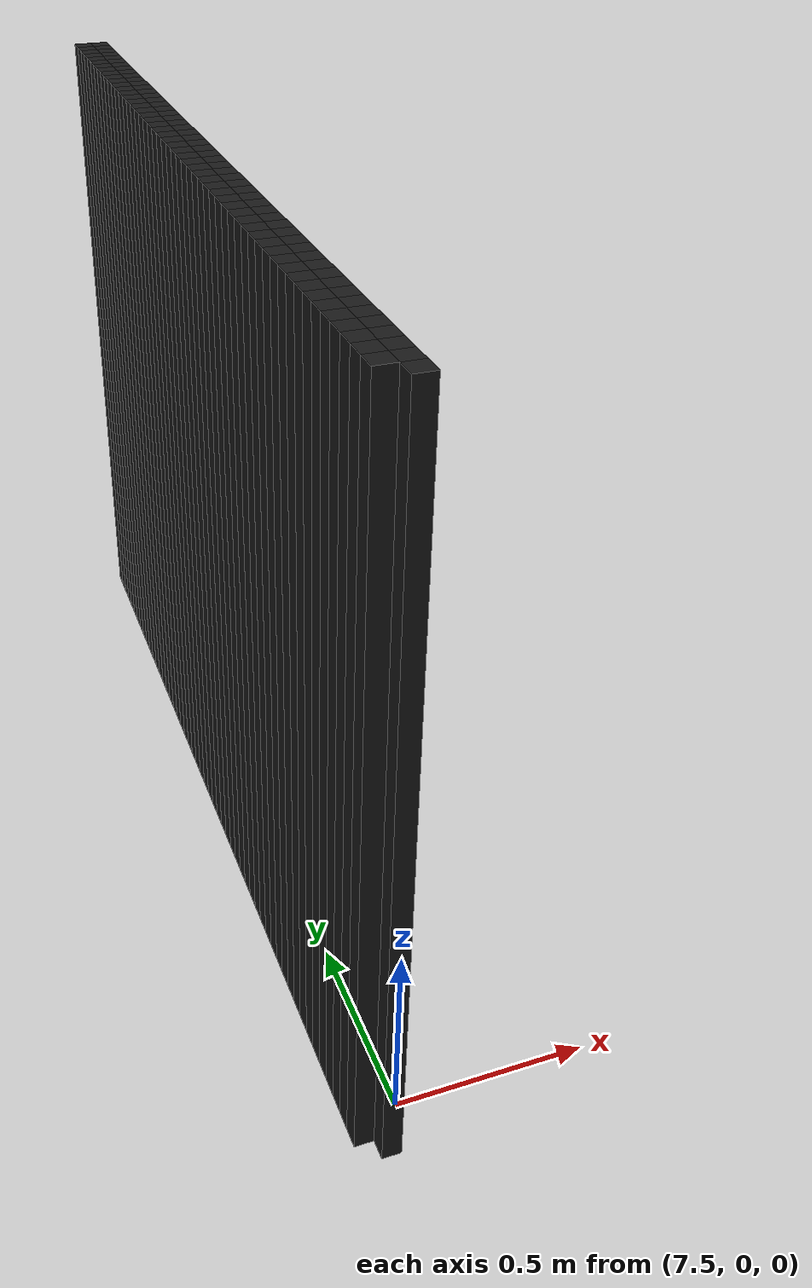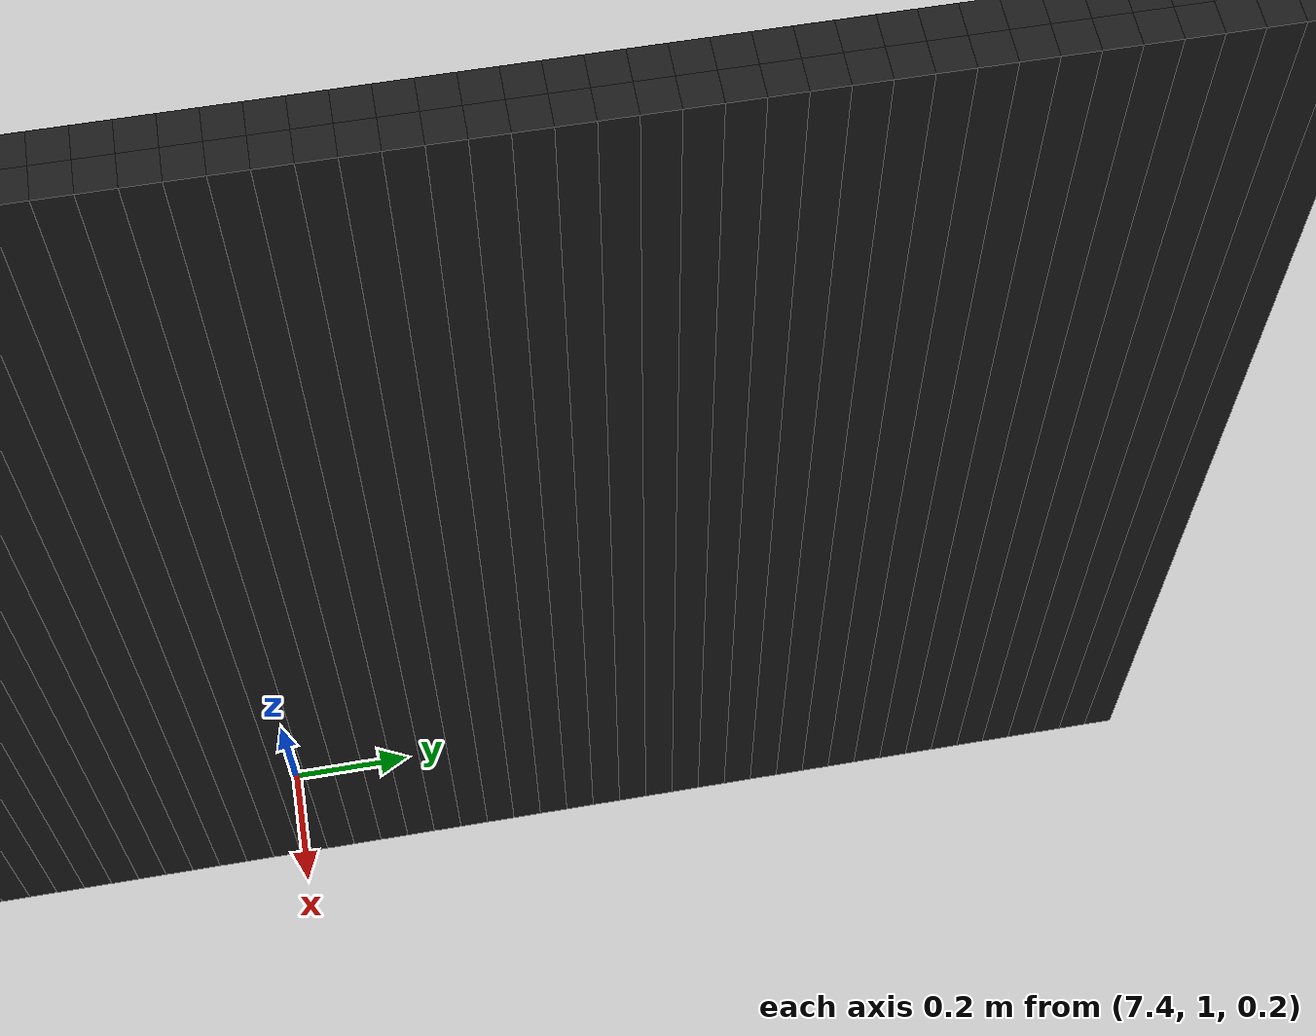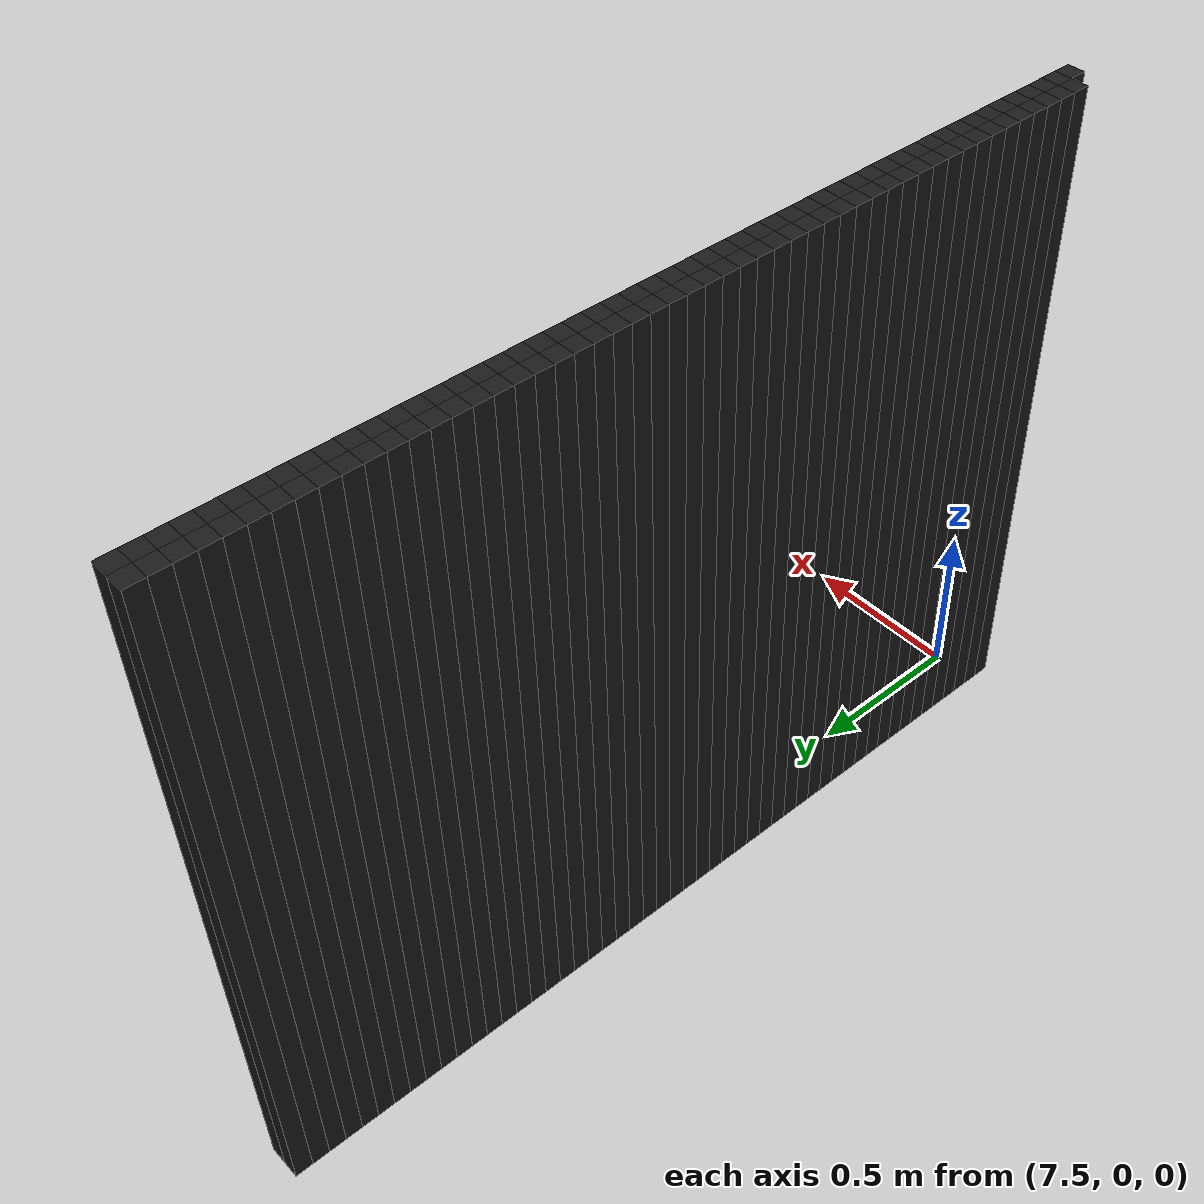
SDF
<sdf version="1.6">
 <model name="obstacle_238_117">
  <pose>7.390000000000001 2.5 1.0 0 0 0</pose>
  <static>true</static>
  <link name="box_link">
   <collision name="box_collision"><geometry><box><size>0.05 0.05 2.0</size></box></geometry></collision>
   <visual name="box_visual">
    <geometry><box><size>0.05 0.05 2.0</size></box></geometry>
    <material><ambient>0 0 0 1</ambient><diffuse>0.1 0.1 0.1 1</diffuse></material>
   </visual>
  </link>
 </model>
 <model name="obstacle_239_117">
  <pose>7.440000000000001 2.5 1.0 0 0 0</pose>
  <static>true</static>
  <link name="box_link">
   <collision name="box_collision"><geometry><box><size>0.05 0.05 2.0</size></box></geometry></collision>
   <visual name="box_visual">
    <geometry><box><size>0.05 0.05 2.0</size></box></geometry>
    <material><ambient>0 0 0 1</ambient><diffuse>0.1 0.1 0.1 1</diffuse></material>
   </visual>
  </link>
 </model>
 <model name="obstacle_238_118">
  <pose>7.390000000000001 2.45 1.0 0 0 0</pose>
  <static>true</static>
  <link name="box_link">
   <collision name="box_collision"><geometry><box><size>0.05 0.05 2.0</size></box></geometry></collision>
   <visual name="box_visual">
    <geometry><box><size>0.05 0.05 2.0</size></box></geometry>
    <material><ambient>0 0 0 1</ambient><diffuse>0.1 0.1 0.1 1</diffuse></material>
   </visual>
  </link>
 </model>
 <model name="obstacle_239_118">
  <pose>7.440000000000001 2.45 1.0 0 0 0</pose>
  <static>true</static>
  <link name="box_link">
   <collision name="box_collision"><geometry><box><size>0.05 0.05 2.0</size></box></geometry></collision>
   <visual name="box_visual">
    <geometry><box><size>0.05 0.05 2.0</size></box></geometry>
    <material><ambient>0 0 0 1</ambient><diffuse>0.1 0.1 0.1 1</diffuse></material>
   </visual>
  </link>
 </model>
 <model name="obstacle_238_119">
  <pose>7.390000000000001 2.4000000000000004 1.0 0 0 0</pose>
  <static>true</static>
  <link name="box_link">
   <collision name="box_collision"><geometry><box><size>0.05 0.05 2.0</size></box></geometry></collision>
   <visual name="box_visual">
    <geometry><box><size>0.05 0.05 2.0</size></box></geometry>
    <material><ambient>0 0 0 1</ambient><diffuse>0.1 0.1 0.1 1</diffuse></material>
   </visual>
  </link>
 </model>
 <model name="obstacle_239_119">
  <pose>7.440000000000001 2.4000000000000004 1.0 0 0 0</pose>
  <static>true</static>
  <link name="box_link">
   <collision name="box_collision"><geometry><box><size>0.05 0.05 2.0</size></box></geometry></collision>
   <visual name="box_visual">
    <geometry><box><size>0.05 0.05 2.0</size></box></geometry>
    <material><ambient>0 0 0 1</ambient><diffuse>0.1 0.1 0.1 1</diffuse></material>
   </visual>
  </link>
 </model>
 <model name="obstacle_238_120">
  <pose>7.390000000000001 2.3499999999999996 1.0 0 0 0</pose>
  <static>true</static>
  <link name="box_link">
   <collision name="box_collision"><geometry><box><size>0.05 0.05 2.0</size></box></geometry></collision>
   <visual name="box_visual">
    <geometry><box><size>0.05 0.05 2.0</size></box></geometry>
    <material><ambient>0 0 0 1</ambient><diffuse>0.1 0.1 0.1 1</diffuse></material>
   </visual>
  </link>
 </model>
 <model name="obstacle_239_120">
  <pose>7.440000000000001 2.3499999999999996 1.0 0 0 0</pose>
  <static>true</static>
  <link name="box_link">
   <collision name="box_collision"><geometry><box><size>0.05 0.05 2.0</size></box></geometry></collision>
   <visual name="box_visual">
    <geometry><box><size>0.05 0.05 2.0</size></box></geometry>
    <material><ambient>0 0 0 1</ambient><diffuse>0.1 0.1 0.1 1</diffuse></material>
   </visual>
  </link>
 </model>
 <model name="obstacle_238_121">
  <pose>7.390000000000001 2.3 1.0 0 0 0</pose>
  <static>true</static>
  <link name="box_link">
   <collision name="box_collision"><geometry><box><size>0.05 0.05 2.0</size></box></geometry></collision>
   <visual name="box_visual">
    <geometry><box><size>0.05 0.05 2.0</size></box></geometry>
    <material><ambient>0 0 0 1</ambient><diffuse>0.1 0.1 0.1 1</diffuse></material>
   </visual>
  </link>
 </model>
 <model name="obstacle_239_121">
  <pose>7.440000000000001 2.3 1.0 0 0 0</pose>
  <static>true</static>
  <link name="box_link">
   <collision name="box_collision"><geometry><box><size>0.05 0.05 2.0</size></box></geometry></collision>
   <visual name="box_visual">
    <geometry><box><size>0.05 0.05 2.0</size></box></geometry>
    <material><ambient>0 0 0 1</ambient><diffuse>0.1 0.1 0.1 1</diffuse></material>
   </visual>
  </link>
 </model>
 <model name="obstacle_238_122">
  <pose>7.390000000000001 2.25 1.0 0 0 0</pose>
  <static>true</static>
  <link name="box_link">
   <collision name="box_collision"><geometry><box><size>0.05 0.05 2.0</size></box></geometry></collision>
   <visual name="box_visual">
    <geometry><box><size>0.05 0.05 2.0</size></box></geometry>
    <material><ambient>0 0 0 1</ambient><diffuse>0.1 0.1 0.1 1</diffuse></material>
   </visual>
  </link>
 </model>
 <model name="obstacle_239_122">
  <pose>7.440000000000001 2.25 1.0 0 0 0</pose>
  <static>true</static>
  <link name="box_link">
   <collision name="box_collision"><geometry><box><size>0.05 0.05 2.0</size></box></geometry></collision>
   <visual name="box_visual">
    <geometry><box><size>0.05 0.05 2.0</size></box></geometry>
    <material><ambient>0 0 0 1</ambient><diffuse>0.1 0.1 0.1 1</diffuse></material>
   </visual>
  </link>
 </model>
 <model name="obstacle_238_123">
  <pose>7.390000000000001 2.2 1.0 0 0 0</pose>
  <static>true</static>
  <link name="box_link">
   <collision name="box_collision"><geometry><box><size>0.05 0.05 2.0</size></box></geometry></collision>
   <visual name="box_visual">
    <geometry><box><size>0.05 0.05 2.0</size></box></geometry>
    <material><ambient>0 0 0 1</ambient><diffuse>0.1 0.1 0.1 1</diffuse></material>
   </visual>
  </link>
 </model>
 <model name="obstacle_239_123">
  <pose>7.440000000000001 2.2 1.0 0 0 0</pose>
  <static>true</static>
  <link name="box_link">
   <collision name="box_collision"><geometry><box><size>0.05 0.05 2.0</size></box></geometry></collision>
   <visual name="box_visual">
    <geometry><box><size>0.05 0.05 2.0</size></box></geometry>
    <material><ambient>0 0 0 1</ambient><diffuse>0.1 0.1 0.1 1</diffuse></material>
   </visual>
  </link>
 </model>
 <model name="obstacle_238_124">
  <pose>7.390000000000001 2.1500000000000004 1.0 0 0 0</pose>
  <static>true</static>
  <link name="box_link">
   <collision name="box_collision"><geometry><box><size>0.05 0.05 2.0</size></box></geometry></collision>
   <visual name="box_visual">
    <geometry><box><size>0.05 0.05 2.0</size></box></geometry>
    <material><ambient>0 0 0 1</ambient><diffuse>0.1 0.1 0.1 1</diffuse></material>
   </visual>
  </link>
 </model>
 <model name="obstacle_239_124">
  <pose>7.440000000000001 2.1500000000000004 1.0 0 0 0</pose>
  <static>true</static>
  <link name="box_link">
   <collision name="box_collision"><geometry><box><size>0.05 0.05 2.0</size></box></geometry></collision>
   <visual name="box_visual">
    <geometry><box><size>0.05 0.05 2.0</size></box></geometry>
    <material><ambient>0 0 0 1</ambient><diffuse>0.1 0.1 0.1 1</diffuse></material>
   </visual>
  </link>
 </model>
 <model name="obstacle_238_125">
  <pose>7.390000000000001 2.0999999999999996 1.0 0 0 0</pose>
  <static>true</static>
  <link name="box_link">
   <collision name="box_collision"><geometry><box><size>0.05 0.05 2.0</size></box></geometry></collision>
   <visual name="box_visual">
    <geometry><box><size>0.05 0.05 2.0</size></box></geometry>
    <material><ambient>0 0 0 1</ambient><diffuse>0.1 0.1 0.1 1</diffuse></material>
   </visual>
  </link>
 </model>
 <model name="obstacle_239_125">
  <pose>7.440000000000001 2.0999999999999996 1.0 0 0 0</pose>
  <static>true</static>
  <link name="box_link">
   <collision name="box_collision"><geometry><box><size>0.05 0.05 2.0</size></box></geometry></collision>
   <visual name="box_visual">
    <geometry><box><size>0.05 0.05 2.0</size></box></geometry>
    <material><ambient>0 0 0 1</ambient><diffuse>0.1 0.1 0.1 1</diffuse></material>
   </visual>
  </link>
 </model>
 <model name="obstacle_238_126">
  <pose>7.390000000000001 2.05 1.0 0 0 0</pose>
  <static>true</static>
  <link name="box_link">
   <collision name="box_collision"><geometry><box><size>0.05 0.05 2.0</size></box></geometry></collision>
   <visual name="box_visual">
    <geometry><box><size>0.05 0.05 2.0</size></box></geometry>
    <material><ambient>0 0 0 1</ambient><diffuse>0.1 0.1 0.1 1</diffuse></material>
   </visual>
  </link>
 </model>
 <model name="obstacle_239_126">
  <pose>7.440000000000001 2.05 1.0 0 0 0</pose>
  <static>true</static>
  <link name="box_link">
   <collision name="box_collision"><geometry><box><size>0.05 0.05 2.0</size></box></geometry></collision>
   <visual name="box_visual">
    <geometry><box><size>0.05 0.05 2.0</size></box></geometry>
    <material><ambient>0 0 0 1</ambient><diffuse>0.1 0.1 0.1 1</diffuse></material>
   </visual>
  </link>
 </model>
 <model name="obstacle_238_127">
  <pose>7.390000000000001 2.0 1.0 0 0 0</pose>
  <static>true</static>
  <link name="box_link">
   <collision name="box_collision"><geometry><box><size>0.05 0.05 2.0</size></box></geometry></collision>
   <visual name="box_visual">
    <geometry><box><size>0.05 0.05 2.0</size></box></geometry>
    <material><ambient>0 0 0 1</ambient><diffuse>0.1 0.1 0.1 1</diffuse></material>
   </visual>
  </link>
 </model>
 <model name="obstacle_239_127">
  <pose>7.440000000000001 2.0 1.0 0 0 0</pose>
  <static>true</static>
  <link name="box_link">
   <collision name="box_collision"><geometry><box><size>0.05 0.05 2.0</size></box></geometry></collision>
   <visual name="box_visual">
    <geometry><box><size>0.05 0.05 2.0</size></box></geometry>
    <material><ambient>0 0 0 1</ambient><diffuse>0.1 0.1 0.1 1</diffuse></material>
   </visual>
  </link>
 </model>
 <model name="obstacle_238_128">
  <pose>7.390000000000001 1.9500000000000002 1.0 0 0 0</pose>
  <static>true</static>
  <link name="box_link">
   <collision name="box_collision"><geometry><box><size>0.05 0.05 2.0</size></box></geometry></collision>
   <visual name="box_visual">
    <geometry><box><size>0.05 0.05 2.0</size></box></geometry>
    <material><ambient>0 0 0 1</ambient><diffuse>0.1 0.1 0.1 1</diffuse></material>
   </visual>
  </link>
 </model>
 <model name="obstacle_239_128">
  <pose>7.440000000000001 1.9500000000000002 1.0 0 0 0</pose>
  <static>true</static>
  <link name="box_link">
   <collision name="box_collision"><geometry><box><size>0.05 0.05 2.0</size></box></geometry></collision>
   <visual name="box_visual">
    <geometry><box><size>0.05 0.05 2.0</size></box></geometry>
    <material><ambient>0 0 0 1</ambient><diffuse>0.1 0.1 0.1 1</diffuse></material>
   </visual>
  </link>
 </model>
 <model name="obstacle_238_129">
  <pose>7.390000000000001 1.9000000000000004 1.0 0 0 0</pose>
  <static>true</static>
  <link name="box_link">
   <collision name="box_collision"><geometry><box><size>0.05 0.05 2.0</size></box></geometry></collision>
   <visual name="box_visual">
    <geometry><box><size>0.05 0.05 2.0</size></box></geometry>
    <material><ambient>0 0 0 1</ambient><diffuse>0.1 0.1 0.1 1</diffuse></material>
   </visual>
  </link>
 </model>
 <model name="obstacle_239_129">
  <pose>7.440000000000001 1.9000000000000004 1.0 0 0 0</pose>
  <static>true</static>
  <link name="box_link">
   <collision name="box_collision"><geometry><box><size>0.05 0.05 2.0</size></box></geometry></collision>
   <visual name="box_visual">
    <geometry><box><size>0.05 0.05 2.0</size></box></geometry>
    <material><ambient>0 0 0 1</ambient><diffuse>0.1 0.1 0.1 1</diffuse></material>
   </visual>
  </link>
 </model>
 <model name="obstacle_238_130">
  <pose>7.390000000000001 1.8499999999999996 1.0 0 0 0</pose>
  <static>true</static>
  <link name="box_link">
   <collision name="box_collision"><geometry><box><size>0.05 0.05 2.0</size></box></geometry></collision>
   <visual name="box_visual">
    <geometry><box><size>0.05 0.05 2.0</size></box></geometry>
    <material><ambient>0 0 0 1</ambient><diffuse>0.1 0.1 0.1 1</diffuse></material>
   </visual>
  </link>
 </model>
 <model name="obstacle_239_130">
  <pose>7.440000000000001 1.8499999999999996 1.0 0 0 0</pose>
  <static>true</static>
  <link name="box_link">
   <collision name="box_collision"><geometry><box><size>0.05 0.05 2.0</size></box></geometry></collision>
   <visual name="box_visual">
    <geometry><box><size>0.05 0.05 2.0</size></box></geometry>
    <material><ambient>0 0 0 1</ambient><diffuse>0.1 0.1 0.1 1</diffuse></material>
   </visual>
  </link>
 </model>
 <model name="obstacle_238_131">
  <pose>7.390000000000001 1.7999999999999998 1.0 0 0 0</pose>
  <static>true</static>
  <link name="box_link">
   <collision name="box_collision"><geometry><box><size>0.05 0.05 2.0</size></box></geometry></collision>
   <visual name="box_visual">
    <geometry><box><size>0.05 0.05 2.0</size></box></geometry>
    <material><ambient>0 0 0 1</ambient><diffuse>0.1 0.1 0.1 1</diffuse></material>
   </visual>
  </link>
 </model>
 <model name="obstacle_239_131">
  <pose>7.440000000000001 1.7999999999999998 1.0 0 0 0</pose>
  <static>true</static>
  <link name="box_link">
   <collision name="box_collision"><geometry><box><size>0.05 0.05 2.0</size></box></geometry></collision>
   <visual name="box_visual">
    <geometry><box><size>0.05 0.05 2.0</size></box></geometry>
    <material><ambient>0 0 0 1</ambient><diffuse>0.1 0.1 0.1 1</diffuse></material>
   </visual>
  </link>
 </model>
 <model name="obstacle_238_132">
  <pose>7.390000000000001 1.75 1.0 0 0 0</pose>
  <static>true</static>
  <link name="box_link">
   <collision name="box_collision"><geometry><box><size>0.05 0.05 2.0</size></box></geometry></collision>
   <visual name="box_visual">
    <geometry><box><size>0.05 0.05 2.0</size></box></geometry>
    <material><ambient>0 0 0 1</ambient><diffuse>0.1 0.1 0.1 1</diffuse></material>
   </visual>
  </link>
 </model>
 <model name="obstacle_239_132">
  <pose>7.440000000000001 1.75 1.0 0 0 0</pose>
  <static>true</static>
  <link name="box_link">
   <collision name="box_collision"><geometry><box><size>0.05 0.05 2.0</size></box></geometry></collision>
   <visual name="box_visual">
    <geometry><box><size>0.05 0.05 2.0</size></box></geometry>
    <material><ambient>0 0 0 1</ambient><diffuse>0.1 0.1 0.1 1</diffuse></material>
   </visual>
  </link>
 </model>
 <model name="obstacle_238_133">
  <pose>7.390000000000001 1.7000000000000002 1.0 0 0 0</pose>
  <static>true</static>
  <link name="box_link">
   <collision name="box_collision"><geometry><box><size>0.05 0.05 2.0</size></box></geometry></collision>
   <visual name="box_visual">
    <geometry><box><size>0.05 0.05 2.0</size></box></geometry>
    <material><ambient>0 0 0 1</ambient><diffuse>0.1 0.1 0.1 1</diffuse></material>
   </visual>
  </link>
 </model>
 <model name="obstacle_239_133">
  <pose>7.440000000000001 1.7000000000000002 1.0 0 0 0</pose>
  <static>true</static>
  <link name="box_link">
   <collision name="box_collision"><geometry><box><size>0.05 0.05 2.0</size></box></geometry></collision>
   <visual name="box_visual">
    <geometry><box><size>0.05 0.05 2.0</size></box></geometry>
    <material><ambient>0 0 0 1</ambient><diffuse>0.1 0.1 0.1 1</diffuse></material>
   </visual>
  </link>
 </model>
 <model name="obstacle_238_134">
  <pose>7.390000000000001 1.65 1.0 0 0 0</pose>
  <static>true</static>
  <link name="box_link">
   <collision name="box_collision"><geometry><box><size>0.05 0.05 2.0</size></box></geometry></collision>
   <visual name="box_visual">
    <geometry><box><size>0.05 0.05 2.0</size></box></geometry>
    <material><ambient>0 0 0 1</ambient><diffuse>0.1 0.1 0.1 1</diffuse></material>
   </visual>
  </link>
 </model>
 <model name="obstacle_239_134">
  <pose>7.440000000000001 1.65 1.0 0 0 0</pose>
  <static>true</static>
  <link name="box_link">
   <collision name="box_collision"><geometry><box><size>0.05 0.05 2.0</size></box></geometry></collision>
   <visual name="box_visual">
    <geometry><box><size>0.05 0.05 2.0</size></box></geometry>
    <material><ambient>0 0 0 1</ambient><diffuse>0.1 0.1 0.1 1</diffuse></material>
   </visual>
  </link>
 </model>
 <model name="obstacle_238_135">
  <pose>7.390000000000001 1.6 1.0 0 0 0</pose>
  <static>true</static>
  <link name="box_link">
   <collision name="box_collision"><geometry><box><size>0.05 0.05 2.0</size></box></geometry></collision>
   <visual name="box_visual">
    <geometry><box><size>0.05 0.05 2.0</size></box></geometry>
    <material><ambient>0 0 0 1</ambient><diffuse>0.1 0.1 0.1 1</diffuse></material>
   </visual>
  </link>
 </model>
 <model name="obstacle_239_135">
  <pose>7.440000000000001 1.6 1.0 0 0 0</pose>
  <static>true</static>
  <link name="box_link">
   <collision name="box_collision"><geometry><box><size>0.05 0.05 2.0</size></box></geometry></collision>
   <visual name="box_visual">
    <geometry><box><size>0.05 0.05 2.0</size></box></geometry>
    <material><ambient>0 0 0 1</ambient><diffuse>0.1 0.1 0.1 1</diffuse></material>
   </visual>
  </link>
 </model>
 <model name="obstacle_238_136">
  <pose>7.390000000000001 1.5499999999999998 1.0 0 0 0</pose>
  <static>true</static>
  <link name="box_link">
   <collision name="box_collision"><geometry><box><size>0.05 0.05 2.0</size></box></geometry></collision>
   <visual name="box_visual">
    <geometry><box><size>0.05 0.05 2.0</size></box></geometry>
    <material><ambient>0 0 0 1</ambient><diffuse>0.1 0.1 0.1 1</diffuse></material>
   </visual>
  </link>
 </model>
 <model name="obstacle_239_136">
  <pose>7.440000000000001 1.5499999999999998 1.0 0 0 0</pose>
  <static>true</static>
  <link name="box_link">
   <collision name="box_collision"><geometry><box><size>0.05 0.05 2.0</size></box></geometry></collision>
   <visual name="box_visual">
    <geometry><box><size>0.05 0.05 2.0</size></box></geometry>
    <material><ambient>0 0 0 1</ambient><diffuse>0.1 0.1 0.1 1</diffuse></material>
   </visual>
  </link>
 </model>
 <model name="obstacle_238_137">
  <pose>7.390000000000001 1.5 1.0 0 0 0</pose>
  <static>true</static>
  <link name="box_link">
   <collision name="box_collision"><geometry><box><size>0.05 0.05 2.0</size></box></geometry></collision>
   <visual name="box_visual">
    <geometry><box><size>0.05 0.05 2.0</size></box></geometry>
    <material><ambient>0 0 0 1</ambient><diffuse>0.1 0.1 0.1 1</diffuse></material>
   </visual>
  </link>
 </model>
 <model name="obstacle_239_137">
  <pose>7.440000000000001 1.5 1.0 0 0 0</pose>
  <static>true</static>
  <link name="box_link">
   <collision name="box_collision"><geometry><box><size>0.05 0.05 2.0</size></box></geometry></collision>
   <visual name="box_visual">
    <geometry><box><size>0.05 0.05 2.0</size></box></geometry>
    <material><ambient>0 0 0 1</ambient><diffuse>0.1 0.1 0.1 1</diffuse></material>
   </visual>
  </link>
 </model>
 <model name="obstacle_238_138">
  <pose>7.390000000000001 1.4500000000000002 1.0 0 0 0</pose>
  <static>true</static>
  <link name="box_link">
   <collision name="box_collision"><geometry><box><size>0.05 0.05 2.0</size></box></geometry></collision>
   <visual name="box_visual">
    <geometry><box><size>0.05 0.05 2.0</size></box></geometry>
    <material><ambient>0 0 0 1</ambient><diffuse>0.1 0.1 0.1 1</diffuse></material>
   </visual>
  </link>
 </model>
 <model name="obstacle_239_138">
  <pose>7.440000000000001 1.4500000000000002 1.0 0 0 0</pose>
  <static>true</static>
  <link name="box_link">
   <collision name="box_collision"><geometry><box><size>0.05 0.05 2.0</size></box></geometry></collision>
   <visual name="box_visual">
    <geometry><box><size>0.05 0.05 2.0</size></box></geometry>
    <material><ambient>0 0 0 1</ambient><diffuse>0.1 0.1 0.1 1</diffuse></material>
   </visual>
  </link>
 </model>
 <model name="obstacle_238_139">
  <pose>7.390000000000001 1.4 1.0 0 0 0</pose>
  <static>true</static>
  <link name="box_link">
   <collision name="box_collision"><geometry><box><size>0.05 0.05 2.0</size></box></geometry></collision>
   <visual name="box_visual">
    <geometry><box><size>0.05 0.05 2.0</size></box></geometry>
    <material><ambient>0 0 0 1</ambient><diffuse>0.1 0.1 0.1 1</diffuse></material>
   </visual>
  </link>
 </model>
 <model name="obstacle_239_139">
  <pose>7.440000000000001 1.4 1.0 0 0 0</pose>
  <static>true</static>
  <link name="box_link">
   <collision name="box_collision"><geometry><box><size>0.05 0.05 2.0</size></box></geometry></collision>
   <visual name="box_visual">
    <geometry><box><size>0.05 0.05 2.0</size></box></geometry>
    <material><ambient>0 0 0 1</ambient><diffuse>0.1 0.1 0.1 1</diffuse></material>
   </visual>
  </link>
 </model>
 <model name="obstacle_238_140">
  <pose>7.390000000000001 1.35 1.0 0 0 0</pose>
  <static>true</static>
  <link name="box_link">
   <collision name="box_collision"><geometry><box><size>0.05 0.05 2.0</size></box></geometry></collision>
   <visual name="box_visual">
    <geometry><box><size>0.05 0.05 2.0</size></box></geometry>
    <material><ambient>0 0 0 1</ambient><diffuse>0.1 0.1 0.1 1</diffuse></material>
   </visual>
  </link>
 </model>
 <model name="obstacle_239_140">
  <pose>7.440000000000001 1.35 1.0 0 0 0</pose>
  <static>true</static>
  <link name="box_link">
   <collision name="box_collision"><geometry><box><size>0.05 0.05 2.0</size></box></geometry></collision>
   <visual name="box_visual">
    <geometry><box><size>0.05 0.05 2.0</size></box></geometry>
    <material><ambient>0 0 0 1</ambient><diffuse>0.1 0.1 0.1 1</diffuse></material>
   </visual>
  </link>
 </model>
 <model name="obstacle_238_141">
  <pose>7.390000000000001 1.2999999999999998 1.0 0 0 0</pose>
  <static>true</static>
  <link name="box_link">
   <collision name="box_collision"><geometry><box><size>0.05 0.05 2.0</size></box></geometry></collision>
   <visual name="box_visual">
    <geometry><box><size>0.05 0.05 2.0</size></box></geometry>
    <material><ambient>0 0 0 1</ambient><diffuse>0.1 0.1 0.1 1</diffuse></material>
   </visual>
  </link>
 </model>
 <model name="obstacle_239_141">
  <pose>7.440000000000001 1.2999999999999998 1.0 0 0 0</pose>
  <static>true</static>
  <link name="box_link">
   <collision name="box_collision"><geometry><box><size>0.05 0.05 2.0</size></box></geometry></collision>
   <visual name="box_visual">
    <geometry><box><size>0.05 0.05 2.0</size></box></geometry>
    <material><ambient>0 0 0 1</ambient><diffuse>0.1 0.1 0.1 1</diffuse></material>
   </visual>
  </link>
 </model>
 <model name="obstacle_238_142">
  <pose>7.390000000000001 1.25 1.0 0 0 0</pose>
  <static>true</static>
  <link name="box_link">
   <collision name="box_collision"><geometry><box><size>0.05 0.05 2.0</size></box></geometry></collision>
   <visual name="box_visual">
    <geometry><box><size>0.05 0.05 2.0</size></box></geometry>
    <material><ambient>0 0 0 1</ambient><diffuse>0.1 0.1 0.1 1</diffuse></material>
   </visual>
  </link>
 </model>
 <model name="obstacle_239_142">
  <pose>7.440000000000001 1.25 1.0 0 0 0</pose>
  <static>true</static>
  <link name="box_link">
   <collision name="box_collision"><geometry><box><size>0.05 0.05 2.0</size></box></geometry></collision>
   <visual name="box_visual">
    <geometry><box><size>0.05 0.05 2.0</size></box></geometry>
    <material><ambient>0 0 0 1</ambient><diffuse>0.1 0.1 0.1 1</diffuse></material>
   </visual>
  </link>
 </model>
 <model name="obstacle_238_143">
  <pose>7.390000000000001 1.2000000000000002 1.0 0 0 0</pose>
  <static>true</static>
  <link name="box_link">
   <collision name="box_collision"><geometry><box><size>0.05 0.05 2.0</size></box></geometry></collision>
   <visual name="box_visual">
    <geometry><box><size>0.05 0.05 2.0</size></box></geometry>
    <material><ambient>0 0 0 1</ambient><diffuse>0.1 0.1 0.1 1</diffuse></material>
   </visual>
  </link>
 </model>
 <model name="obstacle_239_143">
  <pose>7.440000000000001 1.2000000000000002 1.0 0 0 0</pose>
  <static>true</static>
  <link name="box_link">
   <collision name="box_collision"><geometry><box><size>0.05 0.05 2.0</size></box></geometry></collision>
   <visual name="box_visual">
    <geometry><box><size>0.05 0.05 2.0</size></box></geometry>
    <material><ambient>0 0 0 1</ambient><diffuse>0.1 0.1 0.1 1</diffuse></material>
   </visual>
  </link>
 </model>
 <model name="obstacle_238_144">
  <pose>7.390000000000001 1.15 1.0 0 0 0</pose>
  <static>true</static>
  <link name="box_link">
   <collision name="box_collision"><geometry><box><size>0.05 0.05 2.0</size></box></geometry></collision>
   <visual name="box_visual">
    <geometry><box><size>0.05 0.05 2.0</size></box></geometry>
    <material><ambient>0 0 0 1</ambient><diffuse>0.1 0.1 0.1 1</diffuse></material>
   </visual>
  </link>
 </model>
 <model name="obstacle_239_144">
  <pose>7.440000000000001 1.15 1.0 0 0 0</pose>
  <static>true</static>
  <link name="box_link">
   <collision name="box_collision"><geometry><box><size>0.05 0.05 2.0</size></box></geometry></collision>
   <visual name="box_visual">
    <geometry><box><size>0.05 0.05 2.0</size></box></geometry>
    <material><ambient>0 0 0 1</ambient><diffuse>0.1 0.1 0.1 1</diffuse></material>
   </visual>
  </link>
 </model>
 <model name="obstacle_238_145">
  <pose>7.390000000000001 1.1 1.0 0 0 0</pose>
  <static>true</static>
  <link name="box_link">
   <collision name="box_collision"><geometry><box><size>0.05 0.05 2.0</size></box></geometry></collision>
   <visual name="box_visual">
    <geometry><box><size>0.05 0.05 2.0</size></box></geometry>
    <material><ambient>0 0 0 1</ambient><diffuse>0.1 0.1 0.1 1</diffuse></material>
   </visual>
  </link>
 </model>
 <model name="obstacle_239_145">
  <pose>7.440000000000001 1.1 1.0 0 0 0</pose>
  <static>true</static>
  <link name="box_link">
   <collision name="box_collision"><geometry><box><size>0.05 0.05 2.0</size></box></geometry></collision>
   <visual name="box_visual">
    <geometry><box><size>0.05 0.05 2.0</size></box></geometry>
    <material><ambient>0 0 0 1</ambient><diffuse>0.1 0.1 0.1 1</diffuse></material>
   </visual>
  </link>
 </model>
 <model name="obstacle_238_146">
  <pose>7.390000000000001 1.0499999999999998 1.0 0 0 0</pose>
  <static>true</static>
  <link name="box_link">
   <collision name="box_collision"><geometry><box><size>0.05 0.05 2.0</size></box></geometry></collision>
   <visual name="box_visual">
    <geometry><box><size>0.05 0.05 2.0</size></box></geometry>
    <material><ambient>0 0 0 1</ambient><diffuse>0.1 0.1 0.1 1</diffuse></material>
   </visual>
  </link>
 </model>
 <model name="obstacle_239_146">
  <pose>7.440000000000001 1.0499999999999998 1.0 0 0 0</pose>
  <static>true</static>
  <link name="box_link">
   <collision name="box_collision"><geometry><box><size>0.05 0.05 2.0</size></box></geometry></collision>
   <visual name="box_visual">
    <geometry><box><size>0.05 0.05 2.0</size></box></geometry>
    <material><ambient>0 0 0 1</ambient><diffuse>0.1 0.1 0.1 1</diffuse></material>
   </visual>
  </link>
 </model>
 <model name="obstacle_238_147">
  <pose>7.390000000000001 1.0 1.0 0 0 0</pose>
  <static>true</static>
  <link name="box_link">
   <collision name="box_collision"><geometry><box><size>0.05 0.05 2.0</size></box></geometry></collision>
   <visual name="box_visual">
    <geometry><box><size>0.05 0.05 2.0</size></box></geometry>
    <material><ambient>0 0 0 1</ambient><diffuse>0.1 0.1 0.1 1</diffuse></material>
   </visual>
  </link>
 </model>
 <model name="obstacle_239_147">
  <pose>7.440000000000001 1.0 1.0 0 0 0</pose>
  <static>true</static>
  <link name="box_link">
   <collision name="box_collision"><geometry><box><size>0.05 0.05 2.0</size></box></geometry></collision>
   <visual name="box_visual">
    <geometry><box><size>0.05 0.05 2.0</size></box></geometry>
    <material><ambient>0 0 0 1</ambient><diffuse>0.1 0.1 0.1 1</diffuse></material>
   </visual>
  </link>
 </model>
 <model name="obstacle_238_148">
  <pose>7.390000000000001 0.9500000000000002 1.0 0 0 0</pose>
  <static>true</static>
  <link name="box_link">
   <collision name="box_collision"><geometry><box><size>0.05 0.05 2.0</size></box></geometry></collision>
   <visual name="box_visual">
    <geometry><box><size>0.05 0.05 2.0</size></box></geometry>
    <material><ambient>0 0 0 1</ambient><diffuse>0.1 0.1 0.1 1</diffuse></material>
   </visual>
  </link>
 </model>
 <model name="obstacle_239_148">
  <pose>7.440000000000001 0.9500000000000002 1.0 0 0 0</pose>
  <static>true</static>
  <link name="box_link">
   <collision name="box_collision"><geometry><box><size>0.05 0.05 2.0</size></box></geometry></collision>
   <visual name="box_visual">
    <geometry><box><size>0.05 0.05 2.0</size></box></geometry>
    <material><ambient>0 0 0 1</ambient><diffuse>0.1 0.1 0.1 1</diffuse></material>
   </visual>
  </link>
 </model>
 <model name="obstacle_238_149">
  <pose>7.390000000000001 0.8999999999999999 1.0 0 0 0</pose>
  <static>true</static>
  <link name="box_link">
   <collision name="box_collision"><geometry><box><size>0.05 0.05 2.0</size></box></geometry></collision>
   <visual name="box_visual">
    <geometry><box><size>0.05 0.05 2.0</size></box></geometry>
    <material><ambient>0 0 0 1</ambient><diffuse>0.1 0.1 0.1 1</diffuse></material>
   </visual>
  </link>
 </model>
 <model name="obstacle_239_149">
  <pose>7.440000000000001 0.8999999999999999 1.0 0 0 0</pose>
  <static>true</static>
  <link name="box_link">
   <collision name="box_collision"><geometry><box><size>0.05 0.05 2.0</size></box></geometry></collision>
   <visual name="box_visual">
    <geometry><box><size>0.05 0.05 2.0</size></box></geometry>
    <material><ambient>0 0 0 1</ambient><diffuse>0.1 0.1 0.1 1</diffuse></material>
   </visual>
  </link>
 </model>
 <model name="obstacle_238_150">
  <pose>7.390000000000001 0.8500000000000001 1.0 0 0 0</pose>
  <static>true</static>
  <link name="box_link">
   <collision name="box_collision"><geometry><box><size>0.05 0.05 2.0</size></box></geometry></collision>
   <visual name="box_visual">
    <geometry><box><size>0.05 0.05 2.0</size></box></geometry>
    <material><ambient>0 0 0 1</ambient><diffuse>0.1 0.1 0.1 1</diffuse></material>
   </visual>
  </link>
 </model>
 <model name="obstacle_239_150">
  <pose>7.440000000000001 0.8500000000000001 1.0 0 0 0</pose>
  <static>true</static>
  <link name="box_link">
   <collision name="box_collision"><geometry><box><size>0.05 0.05 2.0</size></box></geometry></collision>
   <visual name="box_visual">
    <geometry><box><size>0.05 0.05 2.0</size></box></geometry>
    <material><ambient>0 0 0 1</ambient><diffuse>0.1 0.1 0.1 1</diffuse></material>
   </visual>
  </link>
 </model>
 <model name="obstacle_238_151">
  <pose>7.390000000000001 0.7999999999999998 1.0 0 0 0</pose>
  <static>true</static>
  <link name="box_link">
   <collision name="box_collision"><geometry><box><size>0.05 0.05 2.0</size></box></geometry></collision>
   <visual name="box_visual">
    <geometry><box><size>0.05 0.05 2.0</size></box></geometry>
    <material><ambient>0 0 0 1</ambient><diffuse>0.1 0.1 0.1 1</diffuse></material>
   </visual>
  </link>
 </model>
 <model name="obstacle_239_151">
  <pose>7.440000000000001 0.7999999999999998 1.0 0 0 0</pose>
  <static>true</static>
  <link name="box_link">
   <collision name="box_collision"><geometry><box><size>0.05 0.05 2.0</size></box></geometry></collision>
   <visual name="box_visual">
    <geometry><box><size>0.05 0.05 2.0</size></box></geometry>
    <material><ambient>0 0 0 1</ambient><diffuse>0.1 0.1 0.1 1</diffuse></material>
   </visual>
  </link>
 </model>
 <model name="obstacle_238_152">
  <pose>7.390000000000001 0.75 1.0 0 0 0</pose>
  <static>true</static>
  <link name="box_link">
   <collision name="box_collision"><geometry><box><size>0.05 0.05 2.0</size></box></geometry></collision>
   <visual name="box_visual">
    <geometry><box><size>0.05 0.05 2.0</size></box></geometry>
    <material><ambient>0 0 0 1</ambient><diffuse>0.1 0.1 0.1 1</diffuse></material>
   </visual>
  </link>
 </model>
 <model name="obstacle_239_152">
  <pose>7.440000000000001 0.75 1.0 0 0 0</pose>
  <static>true</static>
  <link name="box_link">
   <collision name="box_collision"><geometry><box><size>0.05 0.05 2.0</size></box></geometry></collision>
   <visual name="box_visual">
    <geometry><box><size>0.05 0.05 2.0</size></box></geometry>
    <material><ambient>0 0 0 1</ambient><diffuse>0.1 0.1 0.1 1</diffuse></material>
   </visual>
  </link>
 </model>
 <model name="obstacle_238_153">
  <pose>7.390000000000001 0.7000000000000002 1.0 0 0 0</pose>
  <static>true</static>
  <link name="box_link">
   <collision name="box_collision"><geometry><box><size>0.05 0.05 2.0</size></box></geometry></collision>
   <visual name="box_visual">
    <geometry><box><size>0.05 0.05 2.0</size></box></geometry>
    <material><ambient>0 0 0 1</ambient><diffuse>0.1 0.1 0.1 1</diffuse></material>
   </visual>
  </link>
 </model>
 <model name="obstacle_239_153">
  <pose>7.440000000000001 0.7000000000000002 1.0 0 0 0</pose>
  <static>true</static>
  <link name="box_link">
   <collision name="box_collision"><geometry><box><size>0.05 0.05 2.0</size></box></geometry></collision>
   <visual name="box_visual">
    <geometry><box><size>0.05 0.05 2.0</size></box></geometry>
    <material><ambient>0 0 0 1</ambient><diffuse>0.1 0.1 0.1 1</diffuse></material>
   </visual>
  </link>
 </model>
 <model name="obstacle_238_154">
  <pose>7.390000000000001 0.6499999999999999 1.0 0 0 0</pose>
  <static>true</static>
  <link name="box_link">
   <collision name="box_collision"><geometry><box><size>0.05 0.05 2.0</size></box></geometry></collision>
   <visual name="box_visual">
    <geometry><box><size>0.05 0.05 2.0</size></box></geometry>
    <material><ambient>0 0 0 1</ambient><diffuse>0.1 0.1 0.1 1</diffuse></material>
   </visual>
  </link>
 </model>
 <model name="obstacle_239_154">
  <pose>7.440000000000001 0.6499999999999999 1.0 0 0 0</pose>
  <static>true</static>
  <link name="box_link">
   <collision name="box_collision"><geometry><box><size>0.05 0.05 2.0</size></box></geometry></collision>
   <visual name="box_visual">
    <geometry><box><size>0.05 0.05 2.0</size></box></geometry>
    <material><ambient>0 0 0 1</ambient><diffuse>0.1 0.1 0.1 1</diffuse></material>
   </visual>
  </link>
 </model>
 <model name="obstacle_238_155">
  <pose>7.390000000000001 0.6000000000000001 1.0 0 0 0</pose>
  <static>true</static>
  <link name="box_link">
   <collision name="box_collision"><geometry><box><size>0.05 0.05 2.0</size></box></geometry></collision>
   <visual name="box_visual">
    <geometry><box><size>0.05 0.05 2.0</size></box></geometry>
    <material><ambient>0 0 0 1</ambient><diffuse>0.1 0.1 0.1 1</diffuse></material>
   </visual>
  </link>
 </model>
 <model name="obstacle_239_155">
  <pose>7.440000000000001 0.6000000000000001 1.0 0 0 0</pose>
  <static>true</static>
  <link name="box_link">
   <collision name="box_collision"><geometry><box><size>0.05 0.05 2.0</size></box></geometry></collision>
   <visual name="box_visual">
    <geometry><box><size>0.05 0.05 2.0</size></box></geometry>
    <material><ambient>0 0 0 1</ambient><diffuse>0.1 0.1 0.1 1</diffuse></material>
   </visual>
  </link>
 </model>
 <model name="obstacle_238_156">
  <pose>7.390000000000001 0.5499999999999998 1.0 0 0 0</pose>
  <static>true</static>
  <link name="box_link">
   <collision name="box_collision"><geometry><box><size>0.05 0.05 2.0</size></box></geometry></collision>
   <visual name="box_visual">
    <geometry><box><size>0.05 0.05 2.0</size></box></geometry>
    <material><ambient>0 0 0 1</ambient><diffuse>0.1 0.1 0.1 1</diffuse></material>
   </visual>
  </link>
 </model>
 <model name="obstacle_239_156">
  <pose>7.440000000000001 0.5499999999999998 1.0 0 0 0</pose>
  <static>true</static>
  <link name="box_link">
   <collision name="box_collision"><geometry><box><size>0.05 0.05 2.0</size></box></geometry></collision>
   <visual name="box_visual">
    <geometry><box><size>0.05 0.05 2.0</size></box></geometry>
    <material><ambient>0 0 0 1</ambient><diffuse>0.1 0.1 0.1 1</diffuse></material>
   </visual>
  </link>
 </model>
 <model name="obstacle_238_157">
  <pose>7.390000000000001 0.5 1.0 0 0 0</pose>
  <static>true</static>
  <link name="box_link">
   <collision name="box_collision"><geometry><box><size>0.05 0.05 2.0</size></box></geometry></collision>
   <visual name="box_visual">
    <geometry><box><size>0.05 0.05 2.0</size></box></geometry>
    <material><ambient>0 0 0 1</ambient><diffuse>0.1 0.1 0.1 1</diffuse></material>
   </visual>
  </link>
 </model>
 <model name="obstacle_239_157">
  <pose>7.440000000000001 0.5 1.0 0 0 0</pose>
  <static>true</static>
  <link name="box_link">
   <collision name="box_collision"><geometry><box><size>0.05 0.05 2.0</size></box></geometry></collision>
   <visual name="box_visual">
    <geometry><box><size>0.05 0.05 2.0</size></box></geometry>
    <material><ambient>0 0 0 1</ambient><diffuse>0.1 0.1 0.1 1</diffuse></material>
   </visual>
  </link>
 </model>
 <model name="obstacle_238_158">
  <pose>7.390000000000001 0.4500000000000002 1.0 0 0 0</pose>
  <static>true</static>
  <link name="box_link">
   <collision name="box_collision"><geometry><box><size>0.05 0.05 2.0</size></box></geometry></collision>
   <visual name="box_visual">
    <geometry><box><size>0.05 0.05 2.0</size></box></geometry>
    <material><ambient>0 0 0 1</ambient><diffuse>0.1 0.1 0.1 1</diffuse></material>
   </visual>
  </link>
 </model>
 <model name="obstacle_239_158">
  <pose>7.440000000000001 0.4500000000000002 1.0 0 0 0</pose>
  <static>true</static>
  <link name="box_link">
   <collision name="box_collision"><geometry><box><size>0.05 0.05 2.0</size></box></geometry></collision>
   <visual name="box_visual">
    <geometry><box><size>0.05 0.05 2.0</size></box></geometry>
    <material><ambient>0 0 0 1</ambient><diffuse>0.1 0.1 0.1 1</diffuse></material>
   </visual>
  </link>
 </model>
 <model name="obstacle_238_159">
  <pose>7.390000000000001 0.3999999999999999 1.0 0 0 0</pose>
  <static>true</static>
  <link name="box_link">
   <collision name="box_collision"><geometry><box><size>0.05 0.05 2.0</size></box></geometry></collision>
   <visual name="box_visual">
    <geometry><box><size>0.05 0.05 2.0</size></box></geometry>
    <material><ambient>0 0 0 1</ambient><diffuse>0.1 0.1 0.1 1</diffuse></material>
   </visual>
  </link>
 </model>
 <model name="obstacle_239_159">
  <pose>7.440000000000001 0.3999999999999999 1.0 0 0 0</pose>
  <static>true</static>
  <link name="box_link">
   <collision name="box_collision"><geometry><box><size>0.05 0.05 2.0</size></box></geometry></collision>
   <visual name="box_visual">
    <geometry><box><size>0.05 0.05 2.0</size></box></geometry>
    <material><ambient>0 0 0 1</ambient><diffuse>0.1 0.1 0.1 1</diffuse></material>
   </visual>
  </link>
 </model>
 <model name="obstacle_238_160">
  <pose>7.390000000000001 0.3500000000000001 1.0 0 0 0</pose>
  <static>true</static>
  <link name="box_link">
   <collision name="box_collision"><geometry><box><size>0.05 0.05 2.0</size></box></geometry></collision>
   <visual name="box_visual">
    <geometry><box><size>0.05 0.05 2.0</size></box></geometry>
    <material><ambient>0 0 0 1</ambient><diffuse>0.1 0.1 0.1 1</diffuse></material>
   </visual>
  </link>
 </model>
 <model name="obstacle_239_160">
  <pose>7.440000000000001 0.3500000000000001 1.0 0 0 0</pose>
  <static>true</static>
  <link name="box_link">
   <collision name="box_collision"><geometry><box><size>0.05 0.05 2.0</size></box></geometry></collision>
   <visual name="box_visual">
    <geometry><box><size>0.05 0.05 2.0</size></box></geometry>
    <material><ambient>0 0 0 1</ambient><diffuse>0.1 0.1 0.1 1</diffuse></material>
   </visual>
  </link>
 </model>
 <model name="obstacle_238_161">
  <pose>7.390000000000001 0.2999999999999998 1.0 0 0 0</pose>
  <static>true</static>
  <link name="box_link">
   <collision name="box_collision"><geometry><box><size>0.05 0.05 2.0</size></box></geometry></collision>
   <visual name="box_visual">
    <geometry><box><size>0.05 0.05 2.0</size></box></geometry>
    <material><ambient>0 0 0 1</ambient><diffuse>0.1 0.1 0.1 1</diffuse></material>
   </visual>
  </link>
 </model>
 <model name="obstacle_239_161">
  <pose>7.440000000000001 0.2999999999999998 1.0 0 0 0</pose>
  <static>true</static>
  <link name="box_link">
   <collision name="box_collision"><geometry><box><size>0.05 0.05 2.0</size></box></geometry></collision>
   <visual name="box_visual">
    <geometry><box><size>0.05 0.05 2.0</size></box></geometry>
    <material><ambient>0 0 0 1</ambient><diffuse>0.1 0.1 0.1 1</diffuse></material>
   </visual>
  </link>
 </model>
 <model name="obstacle_238_162">
  <pose>7.390000000000001 0.25 1.0 0 0 0</pose>
  <static>true</static>
  <link name="box_link">
   <collision name="box_collision"><geometry><box><size>0.05 0.05 2.0</size></box></geometry></collision>
   <visual name="box_visual">
    <geometry><box><size>0.05 0.05 2.0</size></box></geometry>
    <material><ambient>0 0 0 1</ambient><diffuse>0.1 0.1 0.1 1</diffuse></material>
   </visual>
  </link>
 </model>
 <model name="obstacle_239_162">
  <pose>7.440000000000001 0.25 1.0 0 0 0</pose>
  <static>true</static>
  <link name="box_link">
   <collision name="box_collision"><geometry><box><size>0.05 0.05 2.0</size></box></geometry></collision>
   <visual name="box_visual">
    <geometry><box><size>0.05 0.05 2.0</size></box></geometry>
    <material><ambient>0 0 0 1</ambient><diffuse>0.1 0.1 0.1 1</diffuse></material>
   </visual>
  </link>
 </model>
 <model name="obstacle_238_163">
  <pose>7.390000000000001 0.20000000000000018 1.0 0 0 0</pose>
  <static>true</static>
  <link name="box_link">
   <collision name="box_collision"><geometry><box><size>0.05 0.05 2.0</size></box></geometry></collision>
   <visual name="box_visual">
    <geometry><box><size>0.05 0.05 2.0</size></box></geometry>
    <material><ambient>0 0 0 1</ambient><diffuse>0.1 0.1 0.1 1</diffuse></material>
   </visual>
  </link>
 </model>
 <model name="obstacle_239_163">
  <pose>7.440000000000001 0.20000000000000018 1.0 0 0 0</pose>
  <static>true</static>
  <link name="box_link">
   <collision name="box_collision"><geometry><box><size>0.05 0.05 2.0</size></box></geometry></collision>
   <visual name="box_visual">
    <geometry><box><size>0.05 0.05 2.0</size></box></geometry>
    <material><ambient>0 0 0 1</ambient><diffuse>0.1 0.1 0.1 1</diffuse></material>
   </visual>
  </link>
 </model>
 <model name="obstacle_238_164">
  <pose>7.390000000000001 0.1499999999999999 1.0 0 0 0</pose>
  <static>true</static>
  <link name="box_link">
   <collision name="box_collision"><geometry><box><size>0.05 0.05 2.0</size></box></geometry></collision>
   <visual name="box_visual">
    <geometry><box><size>0.05 0.05 2.0</size></box></geometry>
    <material><ambient>0 0 0 1</ambient><diffuse>0.1 0.1 0.1 1</diffuse></material>
   </visual>
  </link>
 </model>
 <model name="obstacle_239_164">
  <pose>7.440000000000001 0.1499999999999999 1.0 0 0 0</pose>
  <static>true</static>
  <link name="box_link">
   <collision name="box_collision"><geometry><box><size>0.05 0.05 2.0</size></box></geometry></collision>
   <visual name="box_visual">
    <geometry><box><size>0.05 0.05 2.0</size></box></geometry>
    <material><ambient>0 0 0 1</ambient><diffuse>0.1 0.1 0.1 1</diffuse></material>
   </visual>
  </link>
 </model>
 <model name="obstacle_238_165">
  <pose>7.390000000000001 0.10000000000000009 1.0 0 0 0</pose>
  <static>true</static>
  <link name="box_link">
   <collision name="box_collision"><geometry><box><size>0.05 0.05 2.0</size></box></geometry></collision>
   <visual name="box_visual">
    <geometry><box><size>0.05 0.05 2.0</size></box></geometry>
    <material><ambient>0 0 0 1</ambient><diffuse>0.1 0.1 0.1 1</diffuse></material>
   </visual>
  </link>
 </model>
 <model name="obstacle_239_165">
  <pose>7.440000000000001 0.10000000000000009 1.0 0 0 0</pose>
  <static>true</static>
  <link name="box_link">
   <collision name="box_collision"><geometry><box><size>0.05 0.05 2.0</size></box></geometry></collision>
   <visual name="box_visual">
    <geometry><box><size>0.05 0.05 2.0</size></box></geometry>
    <material><ambient>0 0 0 1</ambient><diffuse>0.1 0.1 0.1 1</diffuse></material>
   </visual>
  </link>
 </model>
 <model name="obstacle_238_166">
  <pose>7.390000000000001 0.04999999999999982 1.0 0 0 0</pose>
  <static>true</static>
  <link name="box_link">
   <collision name="box_collision"><geometry><box><size>0.05 0.05 2.0</size></box></geometry></collision>
   <visual name="box_visual">
    <geometry><box><size>0.05 0.05 2.0</size></box></geometry>
    <material><ambient>0 0 0 1</ambient><diffuse>0.1 0.1 0.1 1</diffuse></material>
   </visual>
  </link>
 </model>
 <model name="obstacle_239_166">
  <pose>7.440000000000001 0.04999999999999982 1.0 0 0 0</pose>
  <static>true</static>
  <link name="box_link">
   <collision name="box_collision"><geometry><box><size>0.05 0.05 2.0</size></box></geometry></collision>
   <visual name="box_visual">
    <geometry><box><size>0.05 0.05 2.0</size></box></geometry>
    <material><ambient>0 0 0 1</ambient><diffuse>0.1 0.1 0.1 1</diffuse></material>
   </visual>
  </link>
 </model>
 <model name="obstacle_238_167">
  <pose>7.390000000000001 0.0 1.0 0 0 0</pose>
  <static>true</static>
  <link name="box_link">
   <collision name="box_collision"><geometry><box><size>0.05 0.05 2.0</size></box></geometry></collision>
   <visual name="box_visual">
    <geometry><box><size>0.05 0.05 2.0</size></box></geometry>
    <material><ambient>0 0 0 1</ambient><diffuse>0.1 0.1 0.1 1</diffuse></material>
   </visual>
  </link>
 </model>
 <model name="obstacle_239_167">
  <pose>7.440000000000001 0.0 1.0 0 0 0</pose>
  <static>true</static>
  <link name="box_link">
   <collision name="box_collision"><geometry><box><size>0.05 0.05 2.0</size></box></geometry></collision>
   <visual name="box_visual">
    <geometry><box><size>0.05 0.05 2.0</size></box></geometry>
    <material><ambient>0 0 0 1</ambient><diffuse>0.1 0.1 0.1 1</diffuse></material>
   </visual>
  </link>
 </model>
 <model name="obstacle_238_168">
  <pose>7.390000000000001 -0.050000000000000266 1.0 0 0 0</pose>
  <static>true</static>
  <link name="box_link">
   <collision name="box_collision"><geometry><box><size>0.05 0.05 2.0</size></box></geometry></collision>
   <visual name="box_visual">
    <geometry><box><size>0.05 0.05 2.0</size></box></geometry>
    <material><ambient>0 0 0 1</ambient><diffuse>0.1 0.1 0.1 1</diffuse></material>
   </visual>
  </link>
 </model>
 <model name="obstacle_239_168">
  <pose>7.440000000000001 -0.050000000000000266 1.0 0 0 0</pose>
  <static>true</static>
  <link name="box_link">
   <collision name="box_collision"><geometry><box><size>0.05 0.05 2.0</size></box></geometry></collision>
   <visual name="box_visual">
    <geometry><box><size>0.05 0.05 2.0</size></box></geometry>
    <material><ambient>0 0 0 1</ambient><diffuse>0.1 0.1 0.1 1</diffuse></material>
   </visual>
  </link>
 </model>
 <model name="obstacle_239_169">
  <pose>7.440000000000001 -0.10000000000000009 1.0 0 0 0</pose>
  <static>true</static>
  <link name="box_link">
   <collision name="box_collision"><geometry><box><size>0.05 0.05 2.0</size></box></geometry></collision>
   <visual name="box_visual">
    <geometry><box><size>0.05 0.05 2.0</size></box></geometry>
    <material><ambient>0 0 0 1</ambient><diffuse>0.1 0.1 0.1 1</diffuse></material>
   </visual>
  </link>
 </model>
</sdf>
